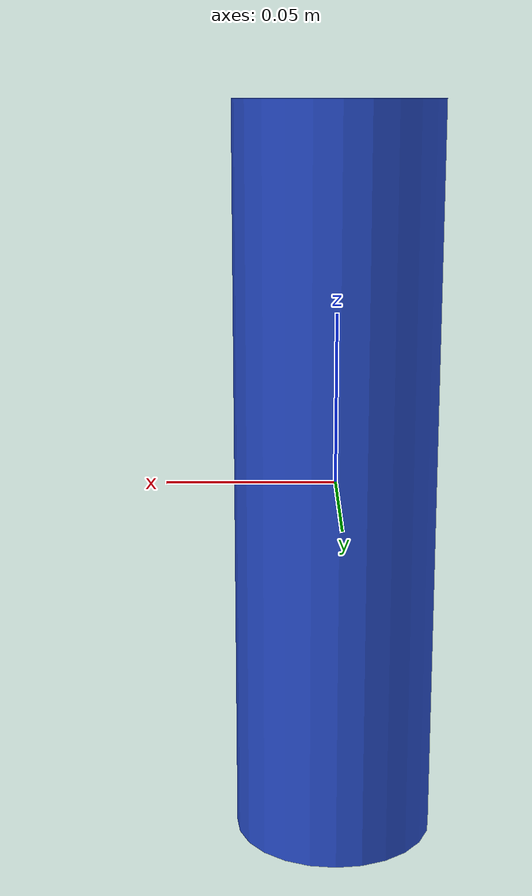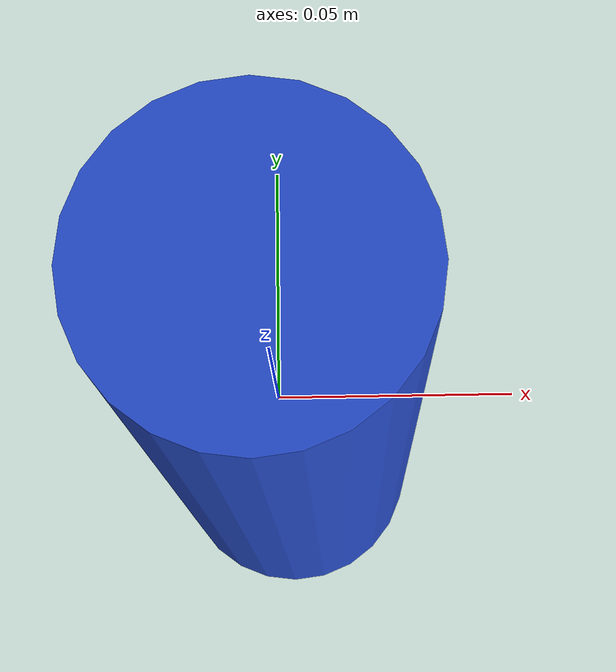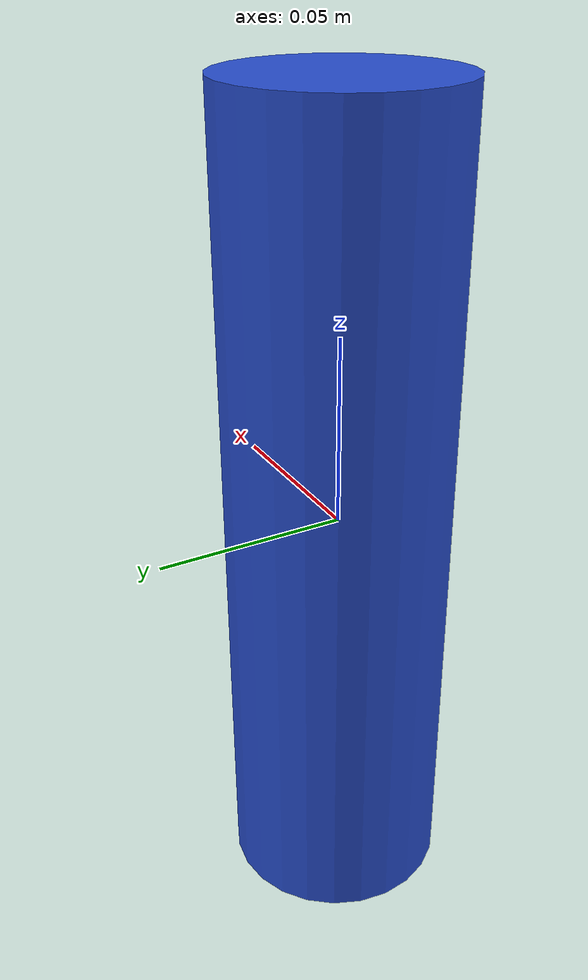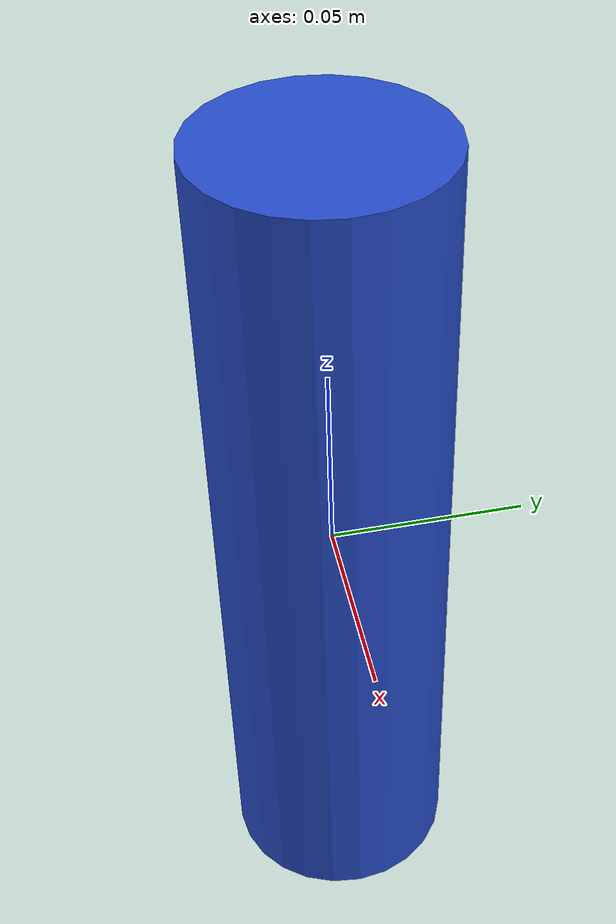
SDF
<?xml version='1.0'?>
<sdf version='1.7'>
  <model name='bottle'>
    <link name='link'>
      <inertial>
        <mass>0.5</mass>  <!-- 假设瓶子质量为0.5kg -->
        <inertia>
          <ixx>0.000417</ixx>  <!-- 圆柱惯性矩公式: Ixx = Iyy = (1/12)*m*(3r² + h²) -->
          <ixy>0</ixy>
          <ixz>0</ixz>
          <iyy>0.000417</iyy>
          <iyz>0</iyz>
          <izz>0.000075</izz>  <!-- Izz = (1/2)*m*r² -->
        </inertia>
        <pose>0 0 0.11 0 0 0</pose>  <!-- 质心位于高度一半 -->
      </inertial>
      <pose>0 0 0 0 0 0</pose>
      <gravity>1</gravity>
      <self_collide>0</self_collide>
      <kinematic>0</kinematic>
      <enable_wind>0</enable_wind>

      <!-- 视觉模型 -->
      <visual name='visual'>
        <pose>0 0 0 0 0 0</pose>
        <geometry>
          <cylinder>
            <radius>0.03</radius>  <!-- 半径3cm -->
            <length>0.22</length>  <!-- 高度22cm -->
          </cylinder>
        </geometry>
        <material>
          <lighting>1</lighting>
          <script>
            <uri>file://media/materials/scripts/gazebo.material</uri>
            <name>Gazebo/Blue</name>  <!-- 蓝色材质 -->
          </script>
          <ambient>0 0 0.8 1</ambient>  <!-- RGBA: 蓝色 -->
          <diffuse>0 0 0.8 1</diffuse>
          <specular>0.1 0.1 0.1 1</specular>
        </material>
        <cast_shadows>1</cast_shadows>
      </visual>

      <!-- 碰撞模型 -->
      <collision name='collision'>
        <laser_retro>0</laser_retro>
        <max_contacts>10</max_contacts>
        <pose>0 0 0 0 0 0</pose>
        <geometry>
          <cylinder>
            <radius>0.03</radius>
            <length>0.22</length>
          </cylinder>
        </geometry>
        <surface>
          <friction>
            <ode>
              <mu>0.5</mu>  <!-- 摩擦系数降低（玻璃/塑料特性） -->
              <mu2>0.5</mu2>
            </ode>
          </friction>
          <bounce>
            <restitution_coefficient>0.3</restitution_coefficient>  <!-- 弹性系数 -->
          </bounce>
        </surface>
      </collision>
    </link>
    <static>0</static>  <!-- 非静态物体 -->
    <allow_auto_disable>1</allow_auto_disable>
  </model>
</sdf>
